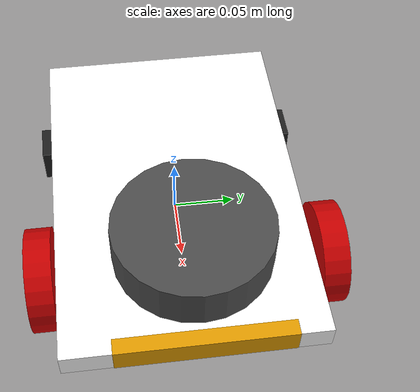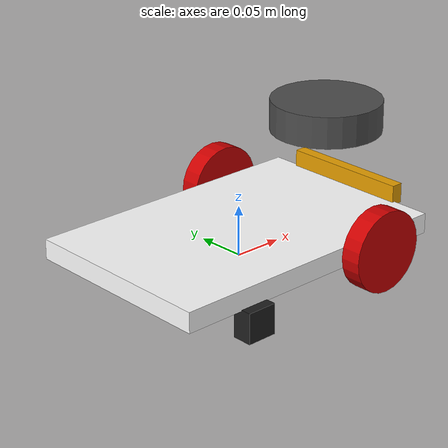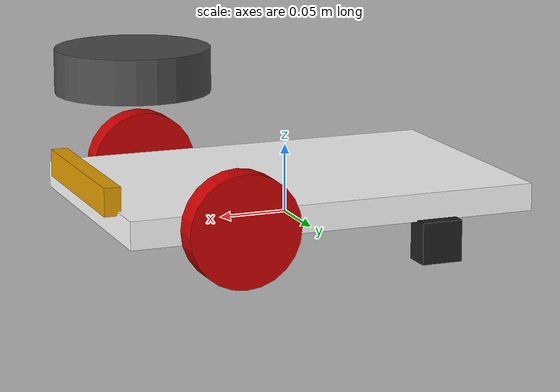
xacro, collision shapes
<?xml version="1.0"?>
<robot xmlns:xacro="http://www.ros.org/wiki/xacro" name="sonibot_base">

<xacro:include filename="$(find sonibot_description)/urdf/common_properties.xacro"/>
<xacro:include filename="$(find sonibot_description)/urdf/sonibot_base.gazebo.xacro"/>

<!--###################### ROBOT BASE ##################################-->
  <!-- Dummy link -->
    <link name="base_footprint"/>

    <joint name="base_footprint_joint" type="fixed">
        <parent link="base_footprint"/>
        <child link="base_link"/>
        <origin xyz="0.0 0.0 0.02" rpy="0.0 0.0 0.0"/>
    </joint>

  <!-- Base link -->
    <link name="base_link">
        <inertial>
            <origin xyz="0.0 0.0 0.0" rpy="0.0 0.0 0.0"/>
            <mass value="4.0"/>
            <xacro:box_inertia m="4.0" x="0.3" y="0.2" z="0.02"/>
        </inertial>
        <visual>
            <origin xyz="0.0 0.0 0.0" rpy="0.0 0.0 0.0"/>
            <geometry>
                <box size="0.3 0.2 0.02"/>
            </geometry>
            <material name="white"/>
        </visual>
        <collision>
            <origin xyz="0.0 0.0 0.0" rpy="0.0 0.0 0.0"/>
            <geometry>
                <box size="0.3 0.2 0.02"/>
            </geometry>
        </collision>
    </link>

  <!-- Left wheel -->
    <joint name="left_wheel_joint" type="continuous">
        <parent link="base_link"/>
        <child link="left_wheel_link"/>
        <axis xyz="0 0 1"/>
        <origin xyz="0.075 ${0.1+0.01} 0" rpy="${-M_PI_2} 0 0"/>
    </joint>

    <link name="left_wheel_link">
        <inertial>
            <origin xyz="0.0 0.0 0.0" rpy="0.0 0.0 0.0"/>
            <mass value="0.5"/>
            <xacro:cylinder_inertia m="0.5" r="0.04" l="0.02"/>
        </inertial>
        <visual>
            <origin xyz="0.0 0.0 0.0" rpy="0.0 0.0 0.0"/>
            <geometry>
                <cylinder radius="0.04" length="0.02"/>
            </geometry>
            <material name="red" />
        </visual>
        <collision>
            <origin xyz="0.0 0.0 0.0" rpy="0.0 0.0 0.0"/>
            <geometry>
                <cylinder radius="0.04" length="0.02"/>
            </geometry>
        </collision>
    </link>

  <!-- Right wheel -->
    <joint name="right_wheel_joint" type="continuous">
        <parent link="base_link"/>
        <child link="right_wheel_link"/>
        <axis xyz="0 0 1"/>
        <origin xyz="0.075 ${-0.1-0.01} 0" rpy="${-M_PI_2} 0 0"/>
    </joint>

    <link name="right_wheel_link">
        <inertial>
            <origin xyz="0.0 0.0 0.0" rpy="0.0 0.0 0.0"/>
            <mass value="0.5"/>
            <xacro:cylinder_inertia m="0.5" r="0.04" l="0.02"/>
        </inertial>
        <visual>
            <origin xyz="0.0 0.0 0.0" rpy="0.0 0.0 0.0"/>
            <geometry>
                <cylinder radius="0.04" length="0.02"/>
            </geometry>
            <material name="red" />
        </visual>
        <collision>
            <origin xyz="0.0 0.0 0.0" rpy="0.0 0.0 0.0"/>
            <geometry>
                <cylinder radius="0.04" length="0.02"/>
            </geometry>
        </collision>
    </link>

  <!-- Left caster -->
    <joint name="left_caster_joint" type="fixed">
        <parent link="base_link"/>
        <child link="left_caster_link"/>
        <origin xyz="-0.075 0.1 -0.025" rpy="0.0 0.0 0.0"/>
    </joint>

    <link name="left_caster_link">
        <inertial>
            <mass value="0.5"/>
            <inertia  ixx="0.001" ixy="0.0" ixz="0.0"
                    iyy="0.001" iyz="0.0"
                    izz="0.001" />
        </inertial>
        <collision>
            <origin xyz="0.0 0.0 0.001"/>
            <geometry>
                <box size="0.03 0.02 0.03"/>
            </geometry>
        </collision>
    </link>

  <!-- Right caster -->
    <joint name="right_caster_joint" type="fixed">
        <parent link="base_link"/>
        <child link="right_caster_link"/>
        <origin xyz="-0.075 -0.1 -0.025" rpy="0.0 0.0 0.0"/>
    </joint>

    <link name="right_caster_link">
        <inertial>
            <mass value="0.5"/>
            <inertia  ixx="0.001" ixy="0.0" ixz="0.0"
                    iyy="0.001" iyz="0.0"
                    izz="0.001" />
        </inertial>
        <collision>
            <origin xyz="0.0 0.0 0.001"/>
            <geometry>
                <box size="0.03 0.02 0.03"/>
            </geometry>
        </collision>
    </link>

<!--###################### SENSORS #####################################-->
  <!-- Imu -->
    <joint name="imu_joint" type="fixed">
        <parent link="base_link"/>
        <child link="imu_link"/>
        <origin xyz="0.0 0.0 0.01" rpy="0.0 0.0 0.0"/>
    </joint>

    <link name="imu_link"/>

  <!-- Lidar -->
    <joint name="scan_joint" type="fixed">
        <parent link="base_link"/>
        <child link="scan_link"/>
        <origin xyz="0.1 0.0 0.1" rpy="0.0 0.0 0.0"/>
    </joint>

    <link name="scan_link">
        <inertial>
            <origin xyz="0.0 0.0 0.0" rpy="0.0 0.0 0.0"/>
            <mass value="0.01"/>
            <inertia  ixx="0.001" ixy="0.0" ixz="0.0"
                    iyy="0.001" iyz="0.0"
                    izz="0.001" />
        </inertial>
        <visual>
        <origin xyz="0.0 0.0 0.0" rpy="0.0 0.0 0.0"/>
        <geometry>
            <mesh filename="package://sonibot_description/meshes/lds.stl" scale="0.001 0.001 0.001"/>
        </geometry>
        <material name="dark"/>
        </visual>
        <collision>
        <origin xyz="0.015 0 -0.0065" rpy="0 0 0"/>
        <geometry>
            <cylinder length="0.0315" radius="0.055"/>
        </geometry>
        </collision>
    </link>

  <!-- RGB Camera -->
    <!--Camera link -->
    <joint name="camera_joint" type="fixed">
        <origin xyz="0.15 -0.06 0.01" rpy="0 0 0"/>
        <parent link="base_link"/>
        <child link="camera_link"/>
    </joint>

    <link name="camera_link">
        <visual>
        <origin xyz="0 0 0" rpy="1.57 0 1.57"/>
        <geometry>
        <mesh filename="package://sonibot_description/meshes/r200.dae" />
        </geometry>
        </visual>
        <collision>
        <origin xyz="0.003 0.065 0.007" rpy="0 0 0"/>
        <geometry>
            <box size="0.012 0.132 0.020"/>
        </geometry>
        </collision>
    </link>
    <!-- Camera parameters -->
    <xacro:property name="r200_cam_rgb_px" value="0.005"/>
    <xacro:property name="r200_cam_rgb_py" value="0.018"/>
    <xacro:property name="r200_cam_rgb_pz" value="0.013"/>
    <xacro:property name="r200_cam_depth_offset" value="0.01"/>
    <!-- Other links -->
    <joint name="camera_rgb_joint" type="fixed">
        <origin xyz="${r200_cam_rgb_px} ${r200_cam_rgb_py} ${r200_cam_rgb_pz}" rpy="0 0 0"/>
        <parent link="camera_link"/>
        <child link="camera_rgb_frame"/>
    </joint>
    <link name="camera_rgb_frame"/>

    <joint name="camera_rgb_optical_joint" type="fixed">
        <origin xyz="0 0 0" rpy="-1.57 0 -1.57"/>
        <parent link="camera_rgb_frame"/>
        <child link="camera_rgb_optical_frame"/>
    </joint>
    <link name="camera_rgb_optical_frame"/>

    <joint name="camera_depth_joint" type="fixed">
        <origin xyz="${r200_cam_rgb_px} ${r200_cam_rgb_py + r200_cam_depth_offset} ${r200_cam_rgb_pz}" rpy="0 0 0"/>
        <parent link="camera_link"/>
        <child link="camera_depth_frame"/>
    </joint>
    <link name="camera_depth_frame"/>

    <joint name="camera_depth_optical_joint" type="fixed">
        <origin xyz="0 0 0" rpy="-1.57 0 -1.57"/>
        <parent link="camera_depth_frame"/>
        <child link="camera_depth_optical_frame"/>
    </joint>
    <link name="camera_depth_optical_frame"/>

<!--###################### TRANSMISSIONS ###############################-->
    <!--If "libgazebo_ros_diff_drive.so" plugin is used to control wheels, you can ignore the below code-->
    <!-- This code is used for ros_control controllers -->

    <!-- left wheel -->
        <transmission name="left_wheel_trans" type="SimpleTransmission">
            <type>transmission_interface/SimpleTransmission</type>
            <actuator name="left_wheel_motor">
                <hardwareInterface>hardware_interface/VelocityJointInterface</hardwareInterface>
                <mechanicalReduction>1</mechanicalReduction>
            </actuator>
            <joint name="left_wheel_joint">
                <hardwareInterface>hardware_interface/VelocityJointInterface</hardwareInterface>
            </joint>
        </transmission>
    <!-- right wheel -->
        <transmission name="right_wheel_trans" type="SimpleTransmission">
            <type>transmission_interface/SimpleTransmission</type>
            <actuator name="right_wheel_motor">
                <hardwareInterface>hardware_interface/VelocityJointInterface</hardwareInterface>
                <mechanicalReduction>1</mechanicalReduction>
            </actuator>
            <joint name="right_wheel_joint">
                <hardwareInterface>hardware_interface/VelocityJointInterface</hardwareInterface>
            </joint>
        </transmission>

</robot>

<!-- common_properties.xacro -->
<robot xmlns:xacro="http://www.ros.org/wiki/xacro" name="common_properties">

 <!-- INIT COLOR-->
  <material name="black">
      <color rgba="0.0 0.0 0.0 1.0"/>
  </material>

  <material name="dark">
    <color rgba="0.3 0.3 0.3 1.0"/>
  </material>
  <material name="light_black">
    <color rgba="0.4 0.4 0.4 1.0"/>
  </material>

  <material name="blue">
    <color rgba="0.0 0.0 0.8 1.0"/>
  </material>

  <material name="green">
    <color rgba="0.0 0.8 0.0 1.0"/>
  </material>

  <material name="grey">
    <color rgba="0.5 0.5 0.5 1.0"/>
  </material>

  <material name="orange">
    <color rgba="${255/255} ${108/255} ${10/255} 1.0"/>
  </material>

  <material name="brown">
    <color rgba="${222/255} ${207/255} ${195/255} 1.0"/>
  </material>

  <material name="red">
    <color rgba="0.8 0.0 0.0 1.0"/>
  </material>

  <material name="white">
    <color rgba="1.0 1.0 1.0 1.0"/>
  </material>

 <!-- FREQUENTLY USED CONSTANT-->
  <xacro:property name="M_PI" value="3.1415927" />
  <xacro:property name="M_PI_2" value="1.5707963" />
  <xacro:property name="DEG_TO_RAD" value="0.017453293" />
  <xacro:property name="RAD_TO_DEG" value="57.295780" />

 <!-- MACRO FOR CALCULATING INERTIA -->
  <!--Cylinder -->
    <xacro:macro name="cylinder_inertia" params="m r l">
      <inertia  ixx="${m*(3*r*r+l*l)/12}" ixy = "0" ixz = "0"
                iyy="${m*(3*r*r+l*l)/12}" iyz = "0"
                izz="${m*r*r/2}" />
    </xacro:macro>
  <!--Box -->
    <xacro:macro name="box_inertia" params="m x y z">
      <inertia  ixx="${m*(y*y+z*z)/12}" ixy = "0" ixz = "0"
                iyy="${m*(x*x+z*z)/12}" iyz = "0"
                izz="${m*(x*x+y*y)/12}" />
    </xacro:macro>
  <!-- Solid sphere -->
    <xacro:macro name="sphere_inertia" params="m r">
      <inertia  ixx="${2*m*r*r/5}" ixy = "0" ixz = "0"
                iyy="${2*m*r*r/5}" iyz = "0"
                izz="${2*m*r*r/5}" />
    </xacro:macro>
</robot>
